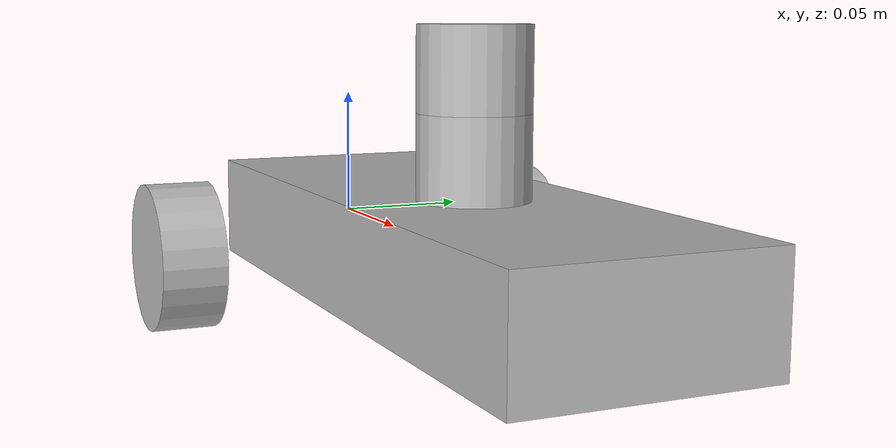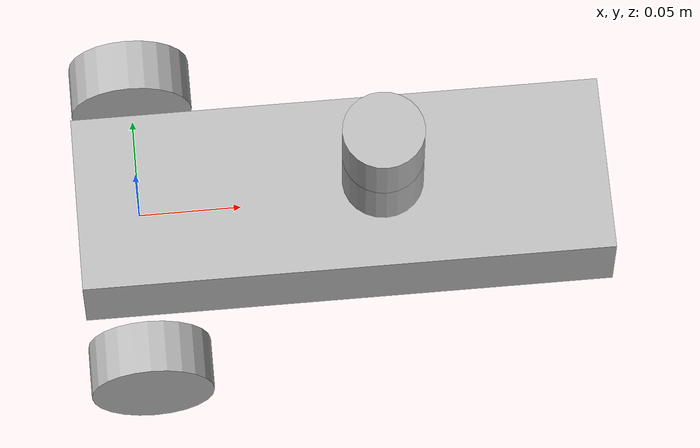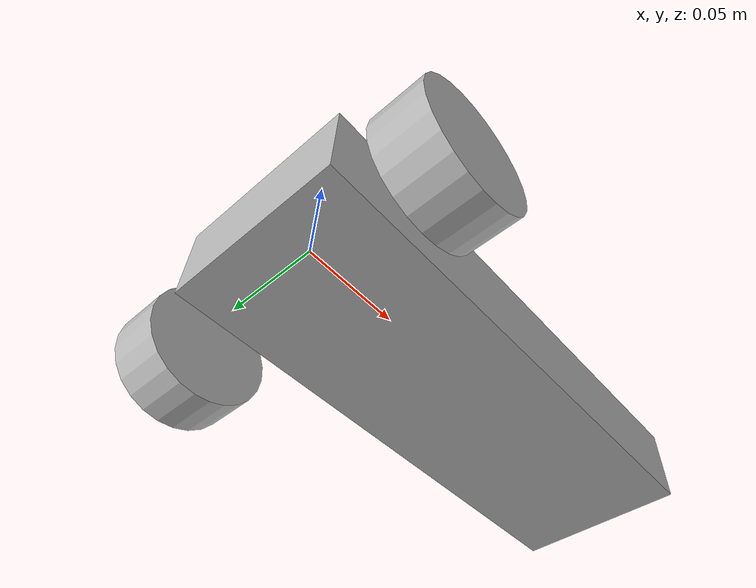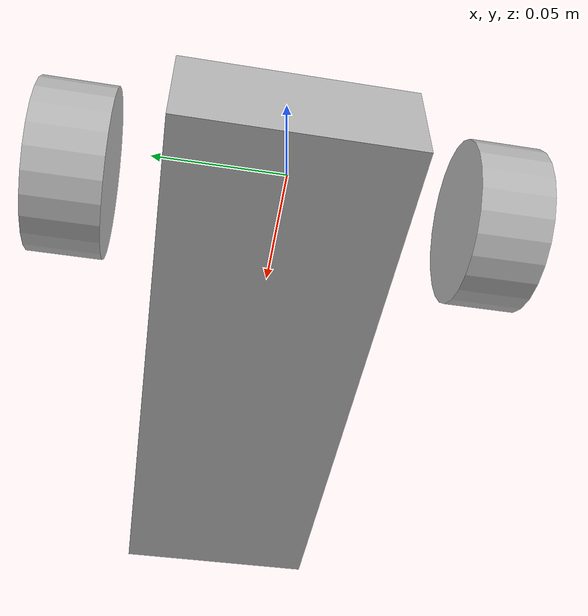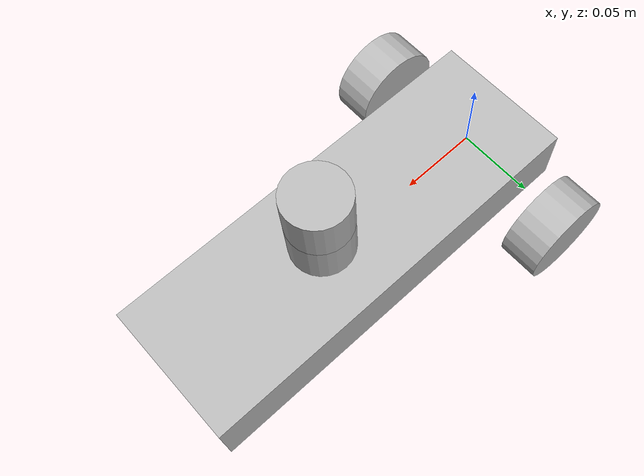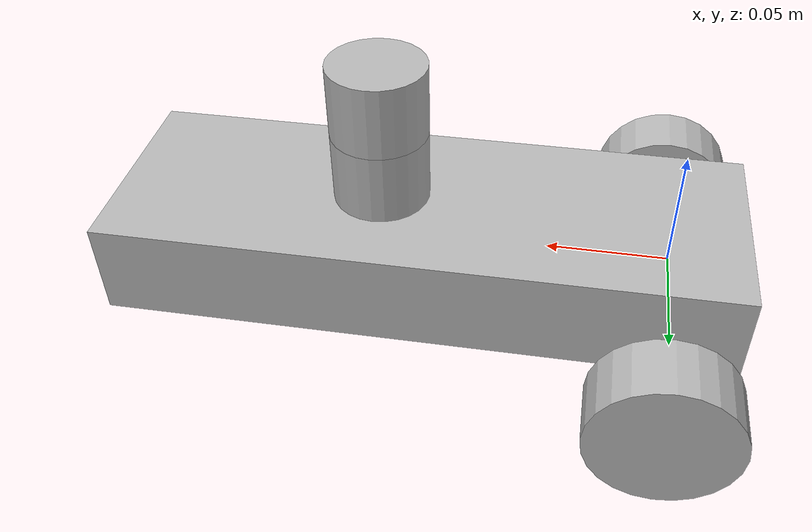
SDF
<sdf version='1.7'>
  <model name='ackerman'>
    <link name='body_link'>
      <inertial>
        <pose>0.114286 0 0.047619 0 -0 0</pose>
        <mass>2.1</mass>
        <inertia>
          <ixx>0.0207881</ixx>
          <ixy>0</ixy>
          <ixz>-0.000571429</ixz>
          <iyy>0.0221595</iyy>
          <iyz>0</iyz>
          <izz>0.0214714</izz>
        </inertia>
      </inertial>
      <collision name='body_link_fixed_joint_lump__body_collision_collision'>
        <pose>0.09 0 0.03 0 -0 0</pose>
        <geometry>
          <cylinder>
            <length>0.1</length>
            <radius>0.15</radius>
          </cylinder>
        </geometry>
      </collision>
      <collision name='body_link_fixed_joint_lump__laserbase_link_collision_1'>
        <pose>0.12 0 0.035 0 -0 0</pose>
        <geometry>
          <cylinder>
            <length>0.03</length>
            <radius>0.02</radius>
          </cylinder>
        </geometry>
      </collision>
      <collision name='body_link_fixed_joint_lump__laser_link_collision_2'>
        <pose>0.12 0 0.065 0 -0 0</pose>
        <geometry>
          <cylinder>
            <length>0.03</length>
            <radius>0.02</radius>
          </cylinder>
        </geometry>
      </collision>
      <visual name='body_link_visual'>
        <pose>0.1 0 0 0 -0 0</pose>
        <geometry>
          <box>
            <size>0.26 0.09 0.04</size>
          </box>
        </geometry>
      </visual>
      <visual name='body_link_fixed_joint_lump__laserbase_link_visual_1'>
        <pose>0.12 0 0.035 0 -0 0</pose>
        <geometry>
          <cylinder>
            <length>0.03</length>
            <radius>0.02</radius>
          </cylinder>
        </geometry>
      </visual>
      <visual name='body_link_fixed_joint_lump__laser_link_visual_2'>
        <pose>0.12 0 0.065 0 -0 0</pose>
        <geometry>
          <cylinder>
            <length>0.03</length>
            <radius>0.02</radius>
          </cylinder>
        </geometry>
      </visual>
    </link>
    <joint name='wheelRL_continuous' type='revolute'>
      <pose relative_to='body_link'>0 0 0 0 -0 0</pose>
      <parent>body_link</parent>
      <child>wheelRL_link</child>
      <axis>
        <xyz>0 1 0</xyz>
        <limit>
          <lower>-1e+16</lower>
          <upper>1e+16</upper>
        </limit>
        <dynamics>
          <spring_reference>0</spring_reference>
          <spring_stiffness>0</spring_stiffness>
        </dynamics>
      </axis>
    </joint>
    <link name='wheelRL_link'>
      <pose relative_to='wheelRL_continuous'>0 0 0 0 -0 0</pose>
      <inertial>
        <pose>0 0 0 0 -0 0</pose>
        <mass>1</mass>
        <inertia>
          <ixx>0.01</ixx>
          <ixy>0</ixy>
          <ixz>0</ixz>
          <iyy>0.01</iyy>
          <iyz>0</iyz>
          <izz>0.01</izz>
        </inertia>
      </inertial>
      <collision name='wheelRL_link_collision'>
        <pose>0 0.075 -0.015 1.5708 -0 0</pose>
        <geometry>
          <cylinder>
            <length>0.026</length>
            <radius>0.03</radius>
          </cylinder>
        </geometry>
      </collision>
      <visual name='wheelRL_link_visual'>
        <pose>0 0.075 -0.015 1.5708 -0 0</pose>
        <geometry>
          <cylinder>
            <length>0.026</length>
            <radius>0.03</radius>
          </cylinder>
        </geometry>
      </visual>
    </link>
    <joint name='wheelRR_continuous' type='revolute'>
      <pose relative_to='body_link'>0 0 0 0 -0 0</pose>
      <parent>body_link</parent>
      <child>wheelRR_link</child>
      <axis>
        <xyz>0 1 0</xyz>
        <limit>
          <lower>-1e+16</lower>
          <upper>1e+16</upper>
        </limit>
        <dynamics>
          <spring_reference>0</spring_reference>
          <spring_stiffness>0</spring_stiffness>
        </dynamics>
      </axis>
    </joint>
    <link name='wheelRR_link'>
      <pose relative_to='wheelRR_continuous'>0 0 0 0 -0 0</pose>
      <inertial>
        <pose>0 0 0 0 -0 0</pose>
        <mass>1</mass>
        <inertia>
          <ixx>0.01</ixx>
          <ixy>0</ixy>
          <ixz>0</ixz>
          <iyy>0.01</iyy>
          <iyz>0</iyz>
          <izz>0.01</izz>
        </inertia>
      </inertial>
      <collision name='wheelRR_link_collision'>
        <pose>0 -0.075 -0.015 1.5708 -0 0</pose>
        <geometry>
          <cylinder>
            <length>0.026</length>
            <radius>0.03</radius>
          </cylinder>
        </geometry>
      </collision>
      <visual name='wheelRR_link_visual'>
        <pose>0 -0.075 -0.015 1.5708 -0 0</pose>
        <geometry>
          <cylinder>
            <length>0.026</length>
            <radius>0.03</radius>
          </cylinder>
        </geometry>
      </visual>
    </link>
    <frame name='laser_joint' attached_to='laserbase_link'>
      <pose>0 0 0.03 0 -0 0</pose>
    </frame>
    <frame name='laser_link' attached_to='laser_joint'/>
    <frame name='laserbase_joint' attached_to='body_link'>
      <pose>0.12 0 0.035 0 -0 0</pose>
    </frame>
    <frame name='laserbase_link' attached_to='laserbase_joint'/>
  </model>
</sdf>
